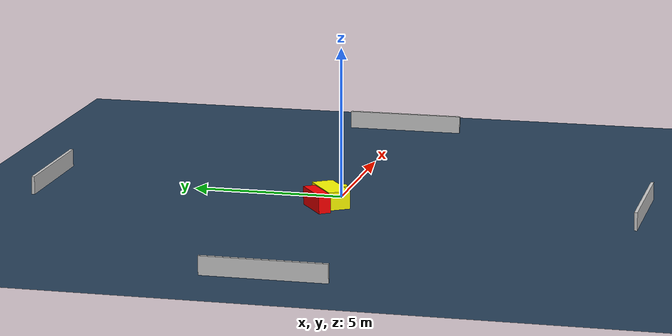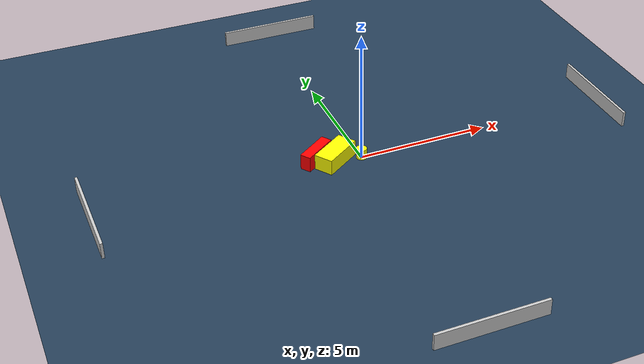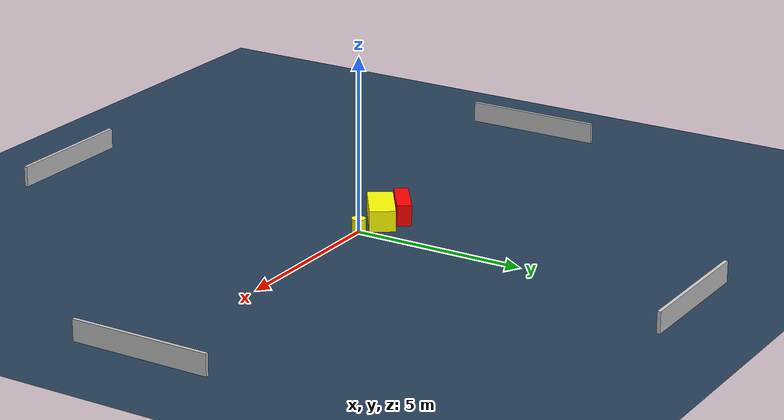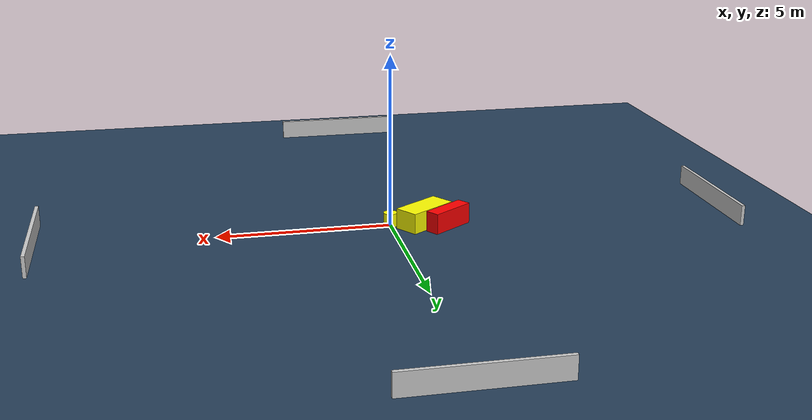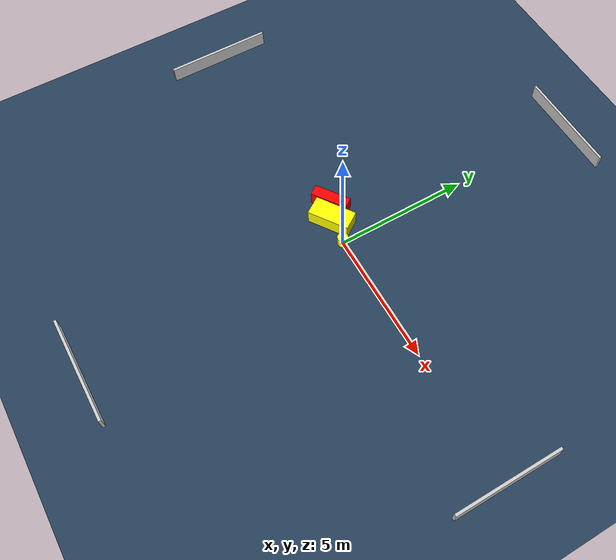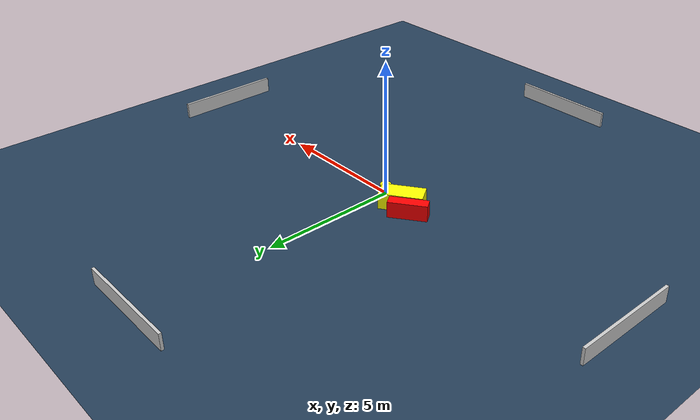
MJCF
<?xml version="1.0" ?>
<mujoco model="generated_environment">
  <option timestep="0.01" integrator="RK4" cone="elliptic"/>
  <default>
    <geom density="1"/>
  </default>
  <asset>
    <texture builtin="gradient" height="3072" name="skybox" rgb1="0.3 0.5 0.7" rgb2="0 0 0" type="skybox" width="512"/>
    <texture builtin="checker" height="300" name="groundplane" rgb1="0.2 0.3 0.4" rgb2="0.1 0.2 0.3" type="2d" width="300"/>
    <material name="groundplane" reflectance="0.2" texrepeat="5 5" texture="groundplane"/>
  </asset>
  <worldbody>
    <light dir="0 0 -1" directional="true" pos="0 0 1.5"/>
    <geom condim="3" friction="0.5 0.005 0.001" material="groundplane" name="floor" pos="0 0 0" size="0 0 0.05" type="plane"/>
    <body name="walls">
      <geom name="wall_1" condim="4" pos="-10.0 0.0 0.3" rgba="0.800000011920929 0.800000011920929 0.800000011920929 1.0" size="0.05 2.0 0.3" type="box"/>
      <geom name="wall_2" condim="4" pos="10.0 0.0 0.3" rgba="0.800000011920929 0.800000011920929 0.800000011920929 1.0" size="0.05 2.0 0.3" type="box"/>
      <geom name="wall_3" condim="4" pos="0.0 -10.0 0.3" rgba="0.800000011920929 0.800000011920929 0.800000011920929 1.0" size="2.0 0.05 0.3" type="box"/>
      <geom name="wall_4" condim="4" pos="0.0 10.0 0.3" rgba="0.800000011920929 0.800000011920929 0.800000011920929 1.0" size="2.0 0.05 0.3" type="box"/>
    </body>
    <body name="robot">
      <joint name="joint_x" type="slide" pos="0 0 0" axis="1 0 0"/>
      <joint name="joint_y" type="slide" pos="0 0 0" axis="0 1 0"/>
      <geom name="robot" type="cylinder" pos="0.0 0.0 0.2" size="0.2 0.2 0.0" mass="5.0" friction="1.0 0.005 0.0001" condim="4" rgba="1.0 1.0 0.0 1.0"/>
    </body>
    <body name="obstacle_1_movable">
      <geom name="obstacle_1_movable" condim="4" pos="-0.9817850893523788 0.12124637212072202 0.3" euler="0 0 34.297360875892515" friction="0.0 0.005 0.001" rgba="1.0 1.0 0.0 1.0" size="0.7835791473244946 0.36509051990728414 0.3" type="box" mass="0.1"/>
      <joint type="free"/>
    </body>
    <body name="obstacle_2_static">
      <geom name="obstacle_2_static" condim="4" pos="-1.610783665013345 0.42980070119942 0.3" euler="0 0 305.08497623039045" friction="0.0 0.005 0.001" rgba="1.0 0.0 0.0 1.0" size="0.20634851543422766 0.6975649333788209 0.3" type="box"/>
    </body>
  </worldbody>
  <actuator>
    <motor name="actuator_x" joint="joint_x" gear="1" ctrlrange="-1 1"/>
    <motor name="actuator_y" joint="joint_y" gear="1" ctrlrange="-1 1"/>
  </actuator>
</mujoco>
